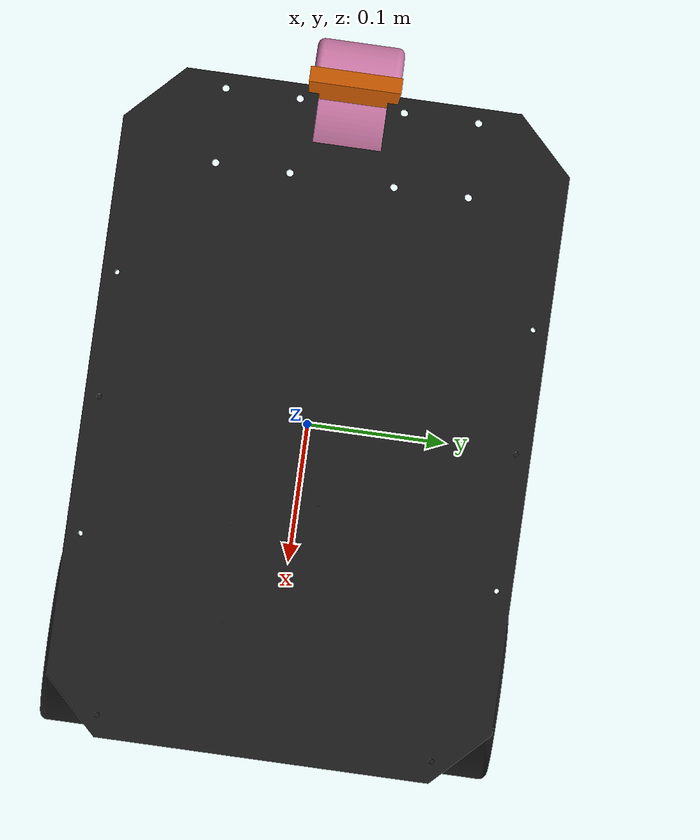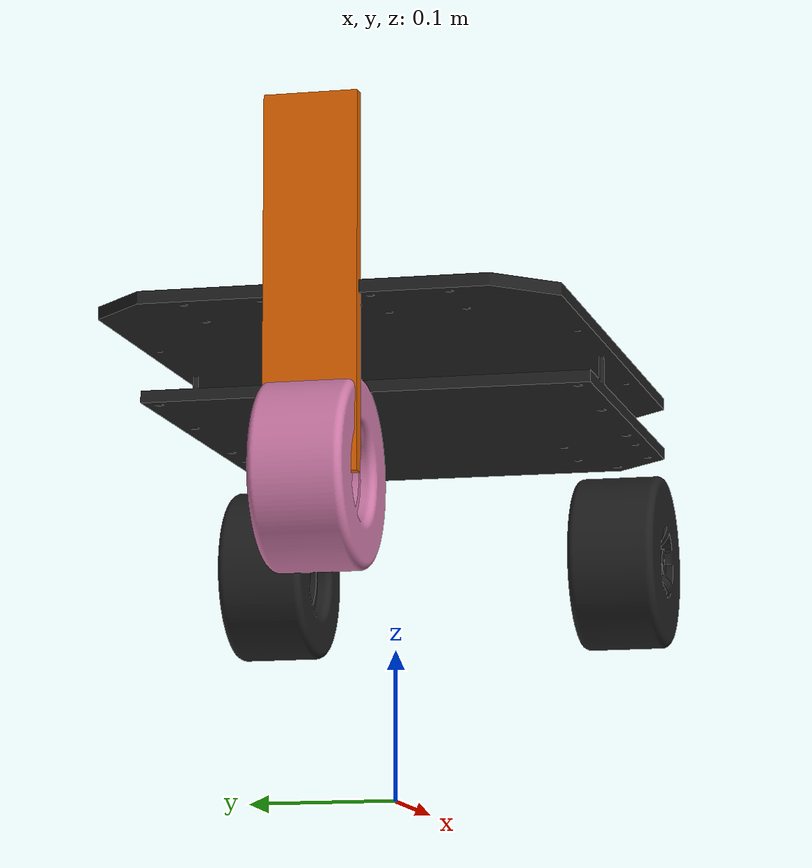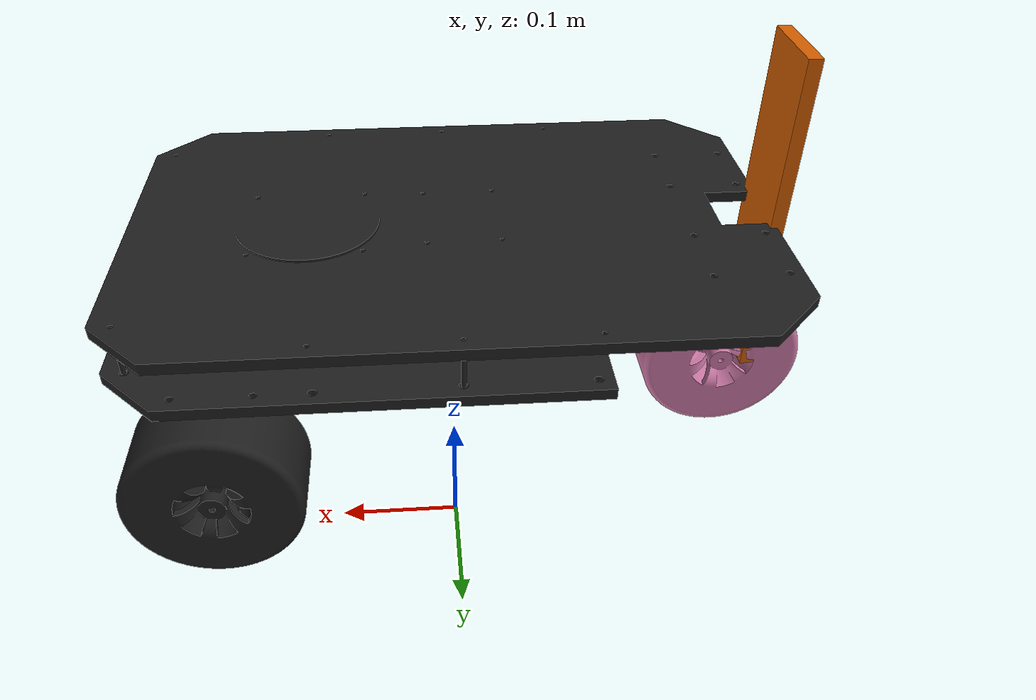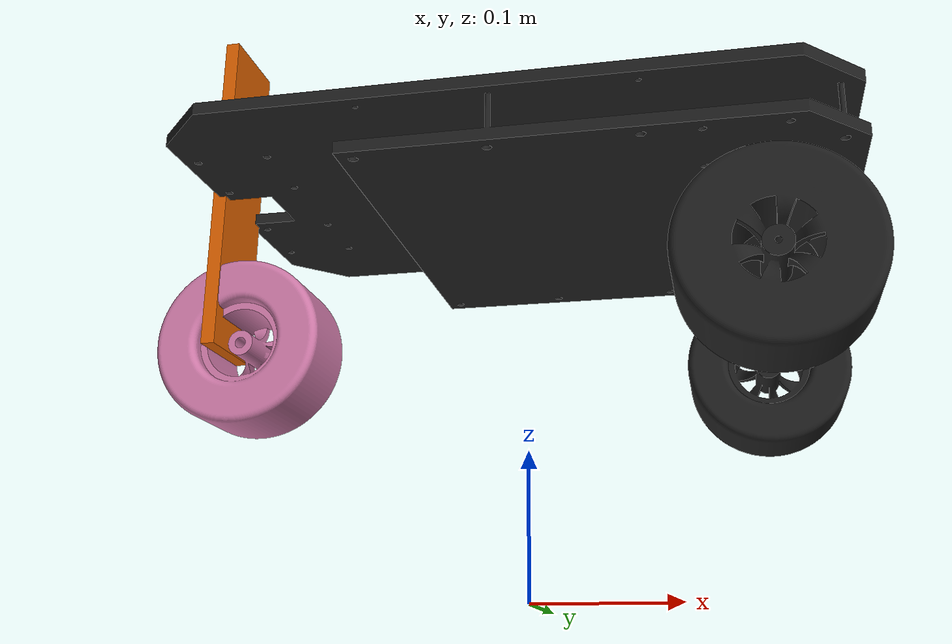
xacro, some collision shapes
<?xml version="1.0" ?>
<robot name="romipi" xmlns:xacro="http://ros.org/wiki/xacro">
  <xacro:include filename="$(find romipi_description)/urdf/common_properties.xacro"/>
  <xacro:include filename="$(find romipi_description)/urdf/romipi.gazebo.xacro"/>

  <xacro:property name="base_link_mass" value="0.6" />
  <xacro:property name="base_link_colision_l" value="0.31875" />
  <xacro:property name="base_link_colision_w" value="0.3" />
  <xacro:property name="base_link_colision_h" value="0.01" />

  <xacro:property name="base_top_surface_link_mass" value="0.8" />
  <xacro:property name="base_top_surface_link_colision_l" value="0.45" />
  <xacro:property name="base_top_surface_link_colision_w" value="0.3" />
  <xacro:property name="base_top_surface_link_colision_h" value="0.01" />

  <xacro:property name="wheel_mass" value="0.160" />
  <xacro:property name="wheel_width" value="0.06" />
  <xacro:property name="wheel_radius" value="0.06" />

  <!-- Fork collision and inertial frame models -->
  <xacro:property name="third_wheel_fork_mass" value="0.240" />
  <xacro:property name="third_wheel_fork_l" value="0.240" />
  <xacro:property name="third_wheel_fork_w" value="0.06" />
  <xacro:property name="third_wheel_fork_h" value="0.01" />

  <!-- Our STL files are too large, so we need to scale them down by this much -->
  <xacro:property name="stl_scale" value="0.001" />

  <!-- rear wheel extra height -->
  <xacro:property name="rw_xtra_h" value="0.023" />

  <link name="base_footprint"/>

  <joint name="base_joint" type="fixed">
    <parent link="base_footprint"/>
    <child link="base_link"/>
    <origin xyz="0.0 0.0 0.25" rpy="0 0 0"/>
  </joint>

  <link name="base_link">
    <visual>
      <origin xyz="0.242 -0.0765 -0.25" rpy="0 0 ${pi / 2}"/>
      <geometry>
        <mesh filename="package://faricks_robot/meshes/bottom_assembly.stl" scale="${stl_scale} ${stl_scale} ${stl_scale}"/>
      </geometry>
      <material name="light_black"/>
    </visual>

    <collision>
      <origin xyz="0.067 0.0 0.01" rpy="0 0 0"/>
      <geometry>
        <box size="${base_link_colision_l} ${base_link_colision_w} ${base_link_colision_h}"/>
      </geometry>
    </collision>

    <inertial>
      <origin xyz="0 0 0.0315" rpy="0 0 ${pi/2}"/>
      <mass value="${base_link_mass}" />
      <inertia ixx="${(1/12) * base_link_mass * (base_link_colision_l**2 + base_link_colision_h**2)}" ixy="0" ixz="0"
               iyy="${(1/12) * base_link_mass * (base_link_colision_w**2 + base_link_colision_h**2)}" iyz="0"
               izz="${(1/12) * base_link_mass * (base_link_colision_w**2 + base_link_colision_l**2)}" />
    </inertial>
  </link>

  <!-- the top surface of the base -->
  <joint name="base_top_surface_joint" type="fixed">
    <parent link="base_link"/>
    <child link="base_top_surface_link"/>
    <origin xyz="0.0 0.0 0.05" rpy="0 0 0"/>
  </joint>

  <link name="base_top_surface_link">
    <visual>
      <origin xyz="0.0 0.0 0.0" rpy="0 0 ${pi / 2}"/>
      <geometry>
        <mesh filename="package://faricks_robot/meshes/base.stl" scale="${stl_scale} ${stl_scale} ${stl_scale}"/>
      </geometry>
      <material name="light_black"/>
    </visual>

    <collision>
      <origin xyz="0.0 0.0 -0.005" rpy="0 0 0"/>
      <geometry>
        <box size="${base_top_surface_link_colision_l} ${base_top_surface_link_colision_w} ${base_top_surface_link_colision_h}"/>
      </geometry>
    </collision>

    <inertial>
      <origin xyz="0 0 0.0315" rpy="0 0 ${pi/2}"/>
      <mass value="${base_top_surface_link_mass}" />
      <inertia ixx="${(1/12) * base_top_surface_link_mass * (base_top_surface_link_colision_l**2 + base_top_surface_link_colision_h**2)}" ixy="0" ixz="0"
               iyy="${(1/12) * base_top_surface_link_mass * (base_top_surface_link_colision_w**2 + base_top_surface_link_colision_h**2)}" iyz="0"
               izz="${(1/12) * base_top_surface_link_mass * (base_top_surface_link_colision_w**2 + base_top_surface_link_colision_l**2)}" />
    </inertial>
  </link>

  <!-- left wheel -->
  <joint name="wheel_left_joint" type="continuous">
    <parent link="base_link"/>
    <child link="wheel_left_link"/>
    <origin xyz="${base_top_surface_link_colision_l / 2.0 - wheel_radius} ${base_top_surface_link_colision_w / 2.0 - 0.025} ${-wheel_radius * 2}" rpy="0 0 0" />
    <axis xyz="0 1 0"/>
  </joint>

  <link name="wheel_left_link">
    <visual>
      <origin xyz="-0.0275 0.1075 ${-rw_xtra_h}" rpy="${pi / 2} 0 0"/>
      <geometry>
        <mesh filename="package://faricks_robot/meshes/wheel.stl" scale="${stl_scale} ${stl_scale} ${stl_scale}"/>
      </geometry>
      <material name="dark"/>
    </visual>

    <collision>
      <origin xyz="0 0 0.05" rpy="${pi / 2} 0 0"/>
      <geometry>
        <cylinder length="${wheel_width}" radius="${wheel_radius}"/>
      </geometry>
    </collision>

    <inertial>
      <origin xyz="0 0 0.05" rpy="${pi / 2} 0 0"/>
      <geometry>
        <cylinder length="${wheel_width}" radius="${wheel_radius}"/>
      </geometry>
      <mass value="${wheel_mass}" />

      <inertia ixx="${(1/12) * wheel_mass * (3 * wheel_radius**2 + wheel_width**2)}" ixy="0" ixz="0"
               iyy="${(1/12) * wheel_mass * (3 * wheel_radius**2 + wheel_width**2)}" iyz="0"
               izz="${(1/2) * wheel_mass * wheel_radius**2}" />
      </inertial>
  </link>

  <joint name="wheel_right_joint" type="continuous">
    <parent link="base_link"/>
    <child link="wheel_right_link"/>
    <origin xyz="${base_top_surface_link_colision_l / 2.0 - wheel_radius} ${-base_top_surface_link_colision_w / 2.0 + 0.025} ${-wheel_radius * 2}" rpy="0 0 0"/>
    <axis xyz="0 1 0"/>
  </joint>

  <link name="wheel_right_link">
    <visual>
      <origin xyz="0.0275 -0.1075 ${-rw_xtra_h}" rpy="${pi / 2} 0 ${pi}"/>
      <geometry>
        <mesh filename="package://faricks_robot/meshes/wheel.stl" scale="${stl_scale} ${stl_scale} ${stl_scale}"/>
      </geometry>
      <material name="dark"/>
    </visual>

    <collision>
      <origin xyz="0 0 0.05" rpy="${pi/2} 0 0"/>
      <geometry>
        <cylinder length="${wheel_width}" radius="${wheel_radius}"/>
      </geometry>
    </collision>

    <inertial>
      <origin xyz="0 0 0.05" rpy="${pi/2} 0 0"/>
      <mass value="${wheel_mass}" />

      <inertia ixx="${(1/12) * wheel_mass * (3 * wheel_radius**2 + wheel_width**2)}" ixy="0" ixz="0"
               iyy="${(1/12) * wheel_mass * (3 * wheel_radius**2 + wheel_width**2)}" iyz="0"
               izz="${(1/2) * wheel_mass * wheel_radius**2}" />
      </inertial>
  </link>

  <!-- Third wheel fork -->
  <joint name="third_wheel_fork_joint" type="revolute">
    <parent link="base_top_surface_link"/>
    <child link="third_wheel_fork_link"/>
    <origin xyz="${-base_top_surface_link_colision_l / 2.0} 0 0" rpy="0 0 0"/>
    <limit lower="${-pi / 2.0}" upper="${pi / 2.0}" effort="30" velocity="${2 * pi}"/> <!-- Assuming that the steering servo can do 1 full revolution in a second-->
    <axis xyz="0 0 1"/>
  </joint>

  <link name="third_wheel_fork_link">
    <visual>
      <origin xyz="${2 * wheel_radius} 0.0325 ${-wheel_radius * 2 - 0.04}" rpy="${pi / 2} 0 ${-pi / 2}"/>
      <geometry>
        <mesh filename="package://faricks_robot/meshes/third_wheel_fork.stl" scale="${stl_scale} ${stl_scale} ${stl_scale}"/>
      </geometry>
      <material name="dark"/>
    </visual>

    <collision>
      <origin xyz="0 0 0" rpy="0 ${pi / 2} 0"/>
      <geometry>
        <box size="${third_wheel_fork_l} ${third_wheel_fork_w} ${third_wheel_fork_h}"/>
      </geometry>
    </collision>

    <inertial>
      <origin xyz="0 0 0" rpy="1.57 0 0"/>
      <mass value="${third_wheel_fork_mass}" />
      <inertia ixx="${(1/12) * third_wheel_fork_mass * (third_wheel_fork_l**2 + third_wheel_fork_h**2)}" ixy="0" ixz="0"
               iyy="${(1/12) * third_wheel_fork_mass * (third_wheel_fork_w**2 + third_wheel_fork_h**2)}" iyz="0"
               izz="${(1/12) * third_wheel_fork_mass * (third_wheel_fork_w**2 + third_wheel_fork_l**2)}" />
      </inertial>
  </link>

  <joint name="wheel_third_joint" type="continuous">
    <parent link="third_wheel_fork_link"/>
    <child link="wheel_third_link"/>
    <origin xyz="0 0 -0.180" rpy="0 0 0"/>
    <axis xyz="0 1 0"/>
  </joint>

  <link name="wheel_third_link">
    <visual>
      <origin xyz="-0.0075 0.109 -0.01" rpy="${pi / 2} 0 0"/>
      <geometry>
        <mesh filename="package://faricks_robot/meshes/wheel.stl" scale="${stl_scale} ${stl_scale} ${stl_scale}"/>
      </geometry>
      <material name="dark"/>
    </visual>

    <collision>
      <origin xyz="0.02 0 0.06225" rpy="${pi / 2} 0 0"/>
      <geometry>
        <cylinder length="${wheel_width}" radius="${wheel_radius}"/>
      </geometry>
    </collision>

    <inertial>
      <origin xyz="0.02 0 0.06225" rpy="${pi / 2} 0 0"/>
      <mass value="${wheel_mass}" />

      <inertia ixx="${(1/12) * wheel_mass * (3 * wheel_radius**2 + wheel_width**2)}" ixy="0" ixz="0"
               iyy="${(1/12) * wheel_mass * (3 * wheel_radius**2 + wheel_width**2)}" iyz="0"
               izz="${(1/2) * wheel_mass * wheel_radius**2}" />
      </inertial>
  </link>

  <joint name="imu_joint" type="fixed">
    <parent link="base_link"/>
    <child link="imu_link"/>
    <origin xyz="-0.032 0 0.068" rpy="0 0 0"/>
  </joint>

  <link name="imu_link"/>

</robot>
